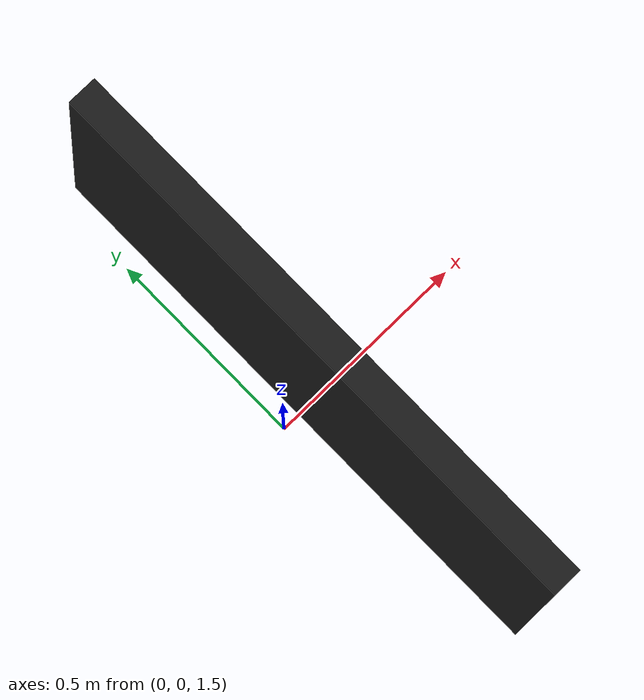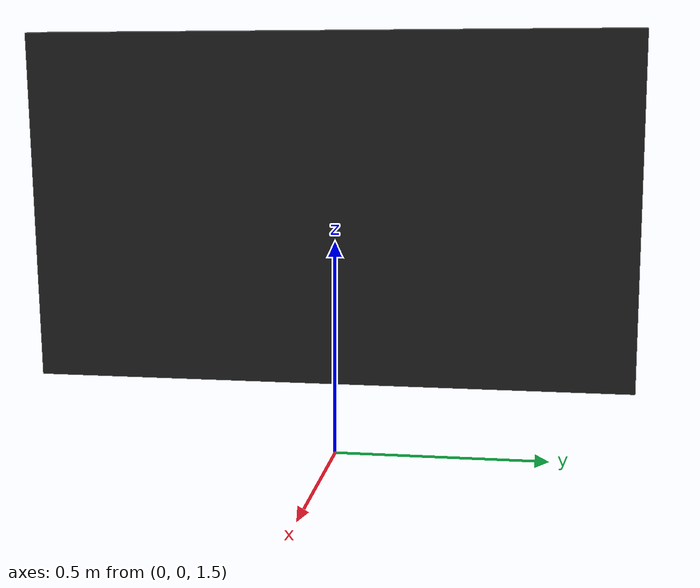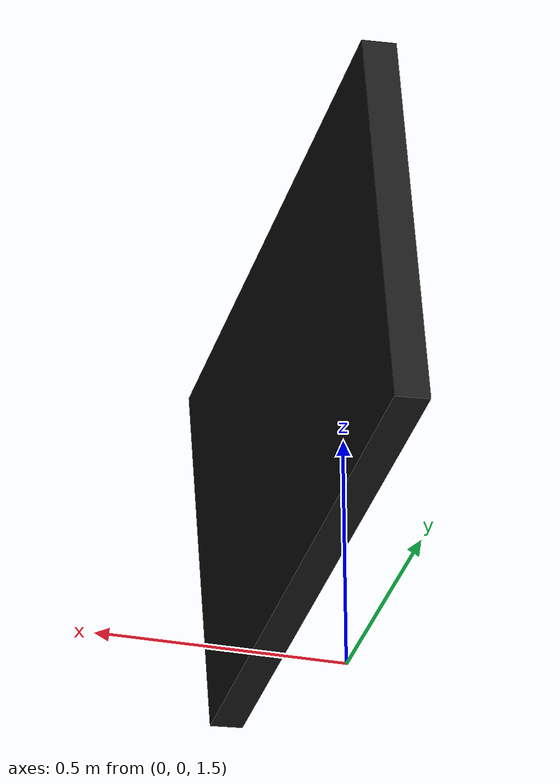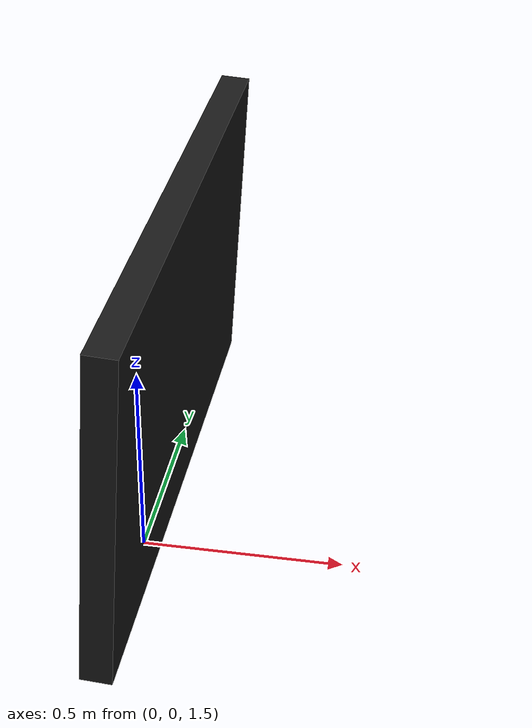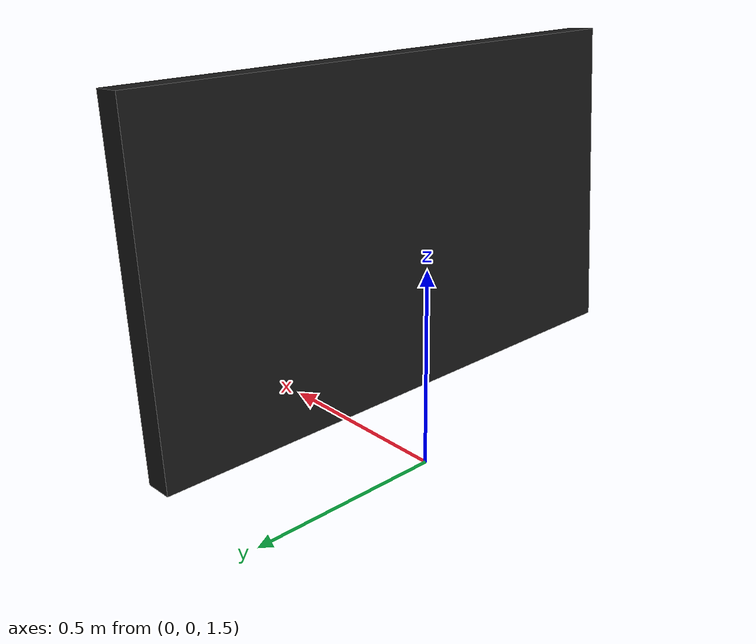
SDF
<?xml version="1.0" ?>
<sdf version="1.6">
  <model name="impuls/tv" type="tv">
    <static>true</static>
    <link name="1_link">
      <collision name="1_col">
        <geometry>
          <box>
            <size>0.07 1.36 0.79</size>
          </box>
        </geometry>
      </collision>
      <visual name="1_vis">
        <geometry>
          <box>
            <size>0.07 1.36 0.79</size>
          </box>
        </geometry>
        <material>
          <ambient>0.1 0.1 0.1 1</ambient>
        </material>
      </visual>
      <pose>0.09 0.0 2.085 0 0.06320683189 0</pose>
    </link>
    <link name="in_front_of">
      <virtual_volume name="in_front_of_vv">
        <geometry>
          <box>
            <size>0.2 1.16 0.01</size>
          </box>
        </geometry>
        <pose>0.535 0.0 0.005 0 0 0</pose>
      </virtual_volume>
    </link>
  </model>
</sdf>
